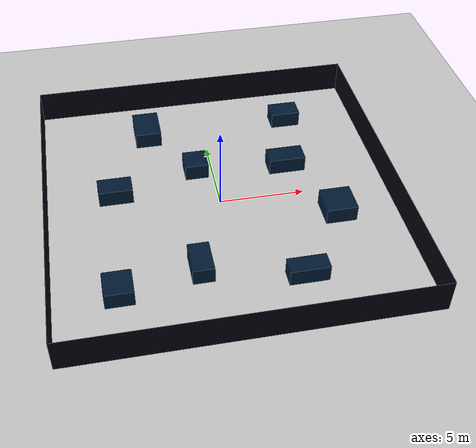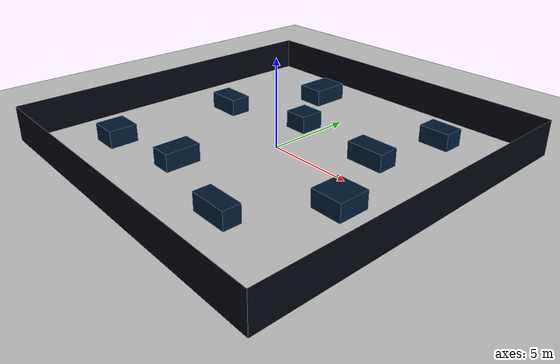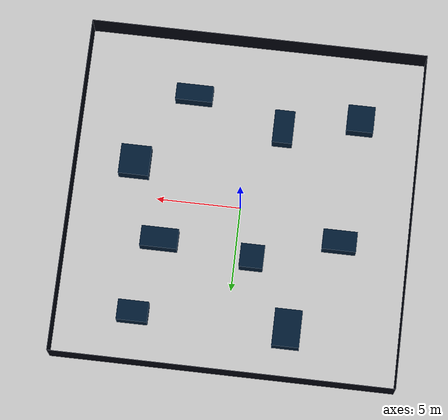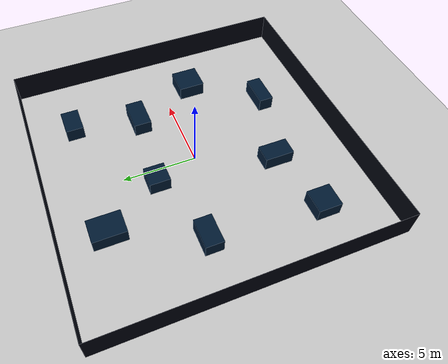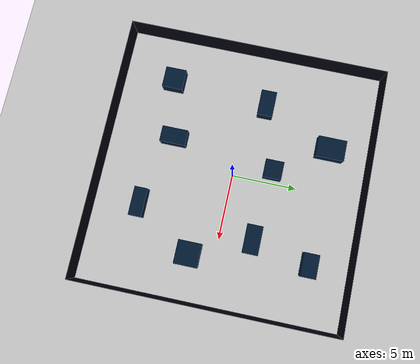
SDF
<?xml version="1.0"?>
<sdf version="1.8">
  <world name="boxes">
    <!-- Física -->
    <physics name="1ms" type="ode">
      <max_step_size>0.001</max_step_size>
      <real_time_factor>1.0</real_time_factor>
      <real_time_update_rate>1000</real_time_update_rate>
    </physics>

    <!-- Plugins de sistema (Fortress) -->
    <plugin name="ignition::gazebo::systems::Physics"
            filename="ignition-gazebo-physics-system"/>
    <plugin name="ignition::gazebo::systems::UserCommands"
            filename="ignition-gazebo-user-commands-system"/>
    <plugin name="ignition::gazebo::systems::SceneBroadcaster"
            filename="ignition-gazebo-scene-broadcaster-system"/>
    <plugin name="ignition::gazebo::systems::Sensors"
            filename="ignition-gazebo-sensors-system">
      <render_engine>ogre2</render_engine>
    </plugin>

    <light name='sun' type='directional'>
      <cast_shadows>1</cast_shadows>
      <pose>0 0 10 0 -0 0</pose>
      <diffuse>0.8 0.8 0.8 1</diffuse>
      <specular>0.2 0.2 0.2 1</specular>
      <attenuation>
        <range>1000</range>
        <constant>0.90000000000000002</constant>
        <linear>0.01</linear>
        <quadratic>0.001</quadratic>
      </attenuation>
      <direction>-0.5 0.1 -0.9</direction>
      <spot>
        <inner_angle>0</inner_angle>
        <outer_angle>0</outer_angle>
        <falloff>0</falloff>
      </spot>
    </light>

    <gravity>0 0 -9.8</gravity>
    <magnetic_field>6e-06 2.3e-05 -4.2e-05</magnetic_field>
    <atmosphere type='adiabatic' />
    <scene>
      <ambient>0.4 0.4 0.4 1</ambient>
      <background>0.7 0.7 0.7 1</background>
      <shadows>1</shadows>
    </scene>

    <!-- Ground -->
    <model name='ground_plane'>
      <static>1</static>
      <link name='link'>
        <collision name='collision'>
          <geometry>
            <plane>
              <normal>0 0 1</normal>
              <size>100 100</size>
            </plane>
          </geometry>
          <surface>
            <friction><ode /></friction>
            <bounce />
            <contact />
          </surface>
        </collision>
        <visual name='visual'>
          <geometry>
            <plane>
              <normal>0 0 1</normal>
              <size>100 100</size>
            </plane>
          </geometry>
          <material>
            <ambient>0.8 0.8 0.8 1</ambient>
            <diffuse>0.8 0.8 0.8 1</diffuse>
            <specular>0.8 0.8 0.8 1</specular>
          </material>
          <plugin name='__default__' filename='__default__' />
        </visual>
      </link>
      <plugin name='__default__' filename='__default__' />
      <pose>0 0 0 0 -0 0</pose>
    </model>

    <!-- Border (caja 20x20) -->
    <model name='border'>
      <pose>0 0 1 0 0 0</pose>
      <static>true</static>

      <link name='wall1'>
        <pose>-10.005 0 0 0 0 0</pose>
        <static>true</static>
        <collision name='wall1_collision'>
          <geometry><box><size>0.01 20 2</size></box></geometry>
        </collision>
        <visual name='wall1_visual'>
          <geometry><box><size>0.01 20 2</size></box></geometry>
          <material>
            <ambient>0.1 0.1 0.1 1</ambient>
            <diffuse>0 0.01 0.05 1</diffuse>
            <specular>0 0.01 0.05 1</specular>
          </material>
        </visual>
      </link>

      <link name='wall2'>
        <pose>10.005 0 0 0 0 0</pose>
        <static>true</static>
        <collision name='wall2_collision'>
          <geometry><box><size>0.01 20 2</size></box></geometry>
        </collision>
        <visual name='wall2_visual'>
          <geometry><box><size>0.01 20 2</size></box></geometry>
          <material>
            <ambient>0.1 0.1 0.1 1</ambient>
            <diffuse>0 0.01 0.05 1</diffuse>
            <specular>0 0.01 0.05 1</specular>
          </material>
        </visual>
      </link>

      <link name='wall3'>
        <pose>0 10.005 0 0 0 0</pose>
        <static>true</static>
        <collision name='wall3_collision'>
          <geometry><box><size>20 0.01 2</size></box></geometry>
        </collision>
        <visual name='wall3_visual'>
          <geometry><box><size>20 0.01 2</size></box></geometry>
          <material>
            <ambient>0.1 0.1 0.1 1</ambient>
            <diffuse>0 0.01 0.05 1</diffuse>
            <specular>0 0.01 0.05 1</specular>
          </material>
        </visual>
      </link>

      <link name='wall4'>
        <pose>0 -10.005 0 0 0 0</pose>
        <static>true</static>
        <collision name='wall4_collision'>
          <geometry><box><size>20 0.01 2</size></box></geometry>
        </collision>
        <visual name='wall4_visual'>
          <geometry><box><size>20 0.01 2</size></box></geometry>
          <material>
            <ambient>0.1 0.1 0.1 1</ambient>
            <diffuse>0 0.01 0.05 1</diffuse>
            <specular>0 0.01 0.05 1</specular>
          </material>
        </visual>
      </link>
    </model>

    <!-- Obstáculos: pocas cajas con buena separación -->
    <model name='obstacles'>
      <pose>0 0 0.5 0 0 0</pose>
      <static>true</static>

      <!-- Caja 1 -->
      <link name='box1'>
        <pose>-6.5 -6.0 0 0 0 0</pose>
        <static>true</static>
        <collision name='box1_collision'>
          <geometry><box><size>1.6 1.6 1</size></box></geometry>
        </collision>
        <visual name='box1_visual'>
          <geometry><box><size>1.6 1.6 1</size></box></geometry>
          <material>
            <ambient>0.1 0.1 0.1 1</ambient>
            <diffuse>0 0.1 0.2 1</diffuse>
            <specular>0 0.01 0.05 1</specular>
          </material>
        </visual>
      </link>

      <!-- Caja 2 -->
      <link name='box2'>
        <pose>-2.0 -5.0 0 0 0 0</pose>
        <static>true</static>
        <collision name='box2_collision'>
          <geometry><box><size>1.2 2.0 1</size></box></geometry>
        </collision>
        <visual name='box2_visual'>
          <geometry><box><size>1.2 2.0 1</size></box></geometry>
          <material>
            <ambient>0.1 0.1 0.1 1</ambient>
            <diffuse>0 0.1 0.2 1</diffuse>
            <specular>0 0.01 0.05 1</specular>
          </material>
        </visual>
      </link>

      <!-- Caja 3 -->
      <link name='box3'>
        <pose>3.5 -6.5 0 0 0 0</pose>
        <static>true</static>
        <collision name='box3_collision'>
          <geometry><box><size>2.2 1.0 1</size></box></geometry>
        </collision>
        <visual name='box3_visual'>
          <geometry><box><size>2.2 1.0 1</size></box></geometry>
          <material>
            <ambient>0.1 0.1 0.1 1</ambient>
            <diffuse>0 0.1 0.2 1</diffuse>
            <specular>0 0.01 0.05 1</specular>
          </material>
        </visual>
      </link>

      <!-- Caja 4 -->
      <link name='box4'>
        <pose>6.5 -2.0 0 0 0 0</pose>
        <static>true</static>
        <collision name='box4_collision'>
          <geometry><box><size>1.8 1.8 1</size></box></geometry>
        </collision>
        <visual name='box4_visual'>
          <geometry><box><size>1.8 1.8 1</size></box></geometry>
          <material>
            <ambient>0.1 0.1 0.1 1</ambient>
            <diffuse>0 0.1 0.2 1</diffuse>
            <specular>0 0.01 0.05 1</specular>
          </material>
        </visual>
      </link>

      <!-- Caja 5 -->
      <link name='box5'>
        <pose>-6.0 1.5 0 0 0 0</pose>
        <static>true</static>
        <collision name='box5_collision'>
          <geometry><box><size>2.0 1.2 1</size></box></geometry>
        </collision>
        <visual name='box5_visual'>
          <geometry><box><size>2.0 1.2 1</size></box></geometry>
          <material>
            <ambient>0.1 0.1 0.1 1</ambient>
            <diffuse>0 0.1 0.2 1</diffuse>
            <specular>0 0.01 0.05 1</specular>
          </material>
        </visual>
      </link>

      <!-- Caja 6 -->
      <link name='box6'>
        <pose>-1.0 3.0 0 0 0 0</pose>
        <static>true</static>
        <collision name='box6_collision'>
          <geometry><box><size>1.4 1.4 1</size></box></geometry>
        </collision>
        <visual name='box6_visual'>
          <geometry><box><size>1.4 1.4 1</size></box></geometry>
          <material>
            <ambient>0.1 0.1 0.1 1</ambient>
            <diffuse>0 0.1 0.2 1</diffuse>
            <specular>0 0.01 0.05 1</specular>
          </material>
        </visual>
      </link>

      <!-- Caja 7 -->
      <link name='box7'>
        <pose>4.5 2.5 0 0 0 0</pose>
        <static>true</static>
        <collision name='box7_collision'>
          <geometry><box><size>2.2 1.2 1</size></box></geometry>
        </collision>
        <visual name='box7_visual'>
          <geometry><box><size>2.2 1.2 1</size></box></geometry>
          <material>
            <ambient>0.1 0.1 0.1 1</ambient>
            <diffuse>0 0.1 0.2 1</diffuse>
            <specular>0 0.01 0.05 1</specular>
          </material>
        </visual>
      </link>

      <!-- Caja 8 -->
      <link name='box8'>
        <pose>-3.5 7.0 0 0 0 0</pose>
        <static>true</static>
        <collision name='box8_collision'>
          <geometry><box><size>1.6 2.2 1</size></box></geometry>
        </collision>
        <visual name='box8_visual'>
          <geometry><box><size>1.6 2.2 1</size></box></geometry>
          <material>
            <ambient>0.1 0.1 0.1 1</ambient>
            <diffuse>0 0.1 0.2 1</diffuse>
            <specular>0 0.01 0.05 1</specular>
          </material>
        </visual>
      </link>

      <!-- Caja 9 -->
      <link name='box9'>
        <pose>5.5 7.0 0 0 0 0</pose>
        <static>true</static>
        <collision name='box9_collision'>
          <geometry><box><size>1.8 1.2 1</size></box></geometry>
        </collision>
        <visual name='box9_visual'>
          <geometry><box><size>1.8 1.2 1</size></box></geometry>
          <material>
            <ambient>0.1 0.1 0.1 1</ambient>
            <diffuse>0 0.1 0.2 1</diffuse>
            <specular>0 0.01 0.05 1</specular>
          </material>
        </visual>
      </link>

    </model>
  </world>
</sdf>
